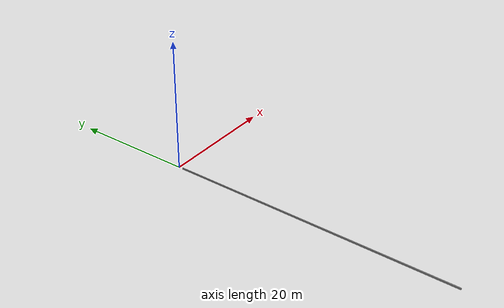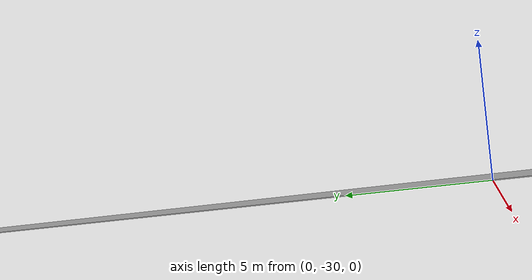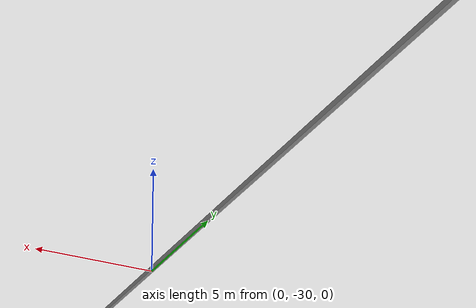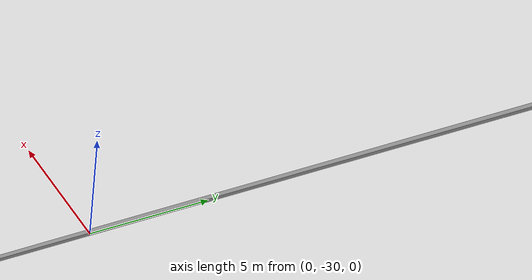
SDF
<?xml version='1.0'?>
<sdf version='1.6'>
  <model name='long_wall'>
    <pose frame=''>-0.01 -21.28 0 0 -0 0</pose>
    <link name='Wall_0'>
      <collision name='Wall_0_Collision'>
        <geometry>
          <box>
            <size>41.25 0.15 0.2</size>
          </box>
        </geometry>
        <pose frame=''>0 0 0.1 0 -0 0</pose>
      </collision>
      <visual name='Wall_0_Visual'>
        <pose frame=''>0 0 0.1 0 -0 0</pose>
        <geometry>
          <box>
            <size>41.25 0.15 0.2</size>
          </box>
        </geometry>
        <material>
          <script>
            <uri>file://media/materials/scripts/gazebo.material</uri>
            <name>Gazebo/Grey</name>
          </script>
          <ambient>1 1 1 1</ambient>
        </material>
        <meta>
          <layer>0</layer>
        </meta>
      </visual>
      <pose frame=''>-0 0 0 0 -0 -1.5708</pose>
    </link>
    <static>1</static>
  </model>
</sdf>
